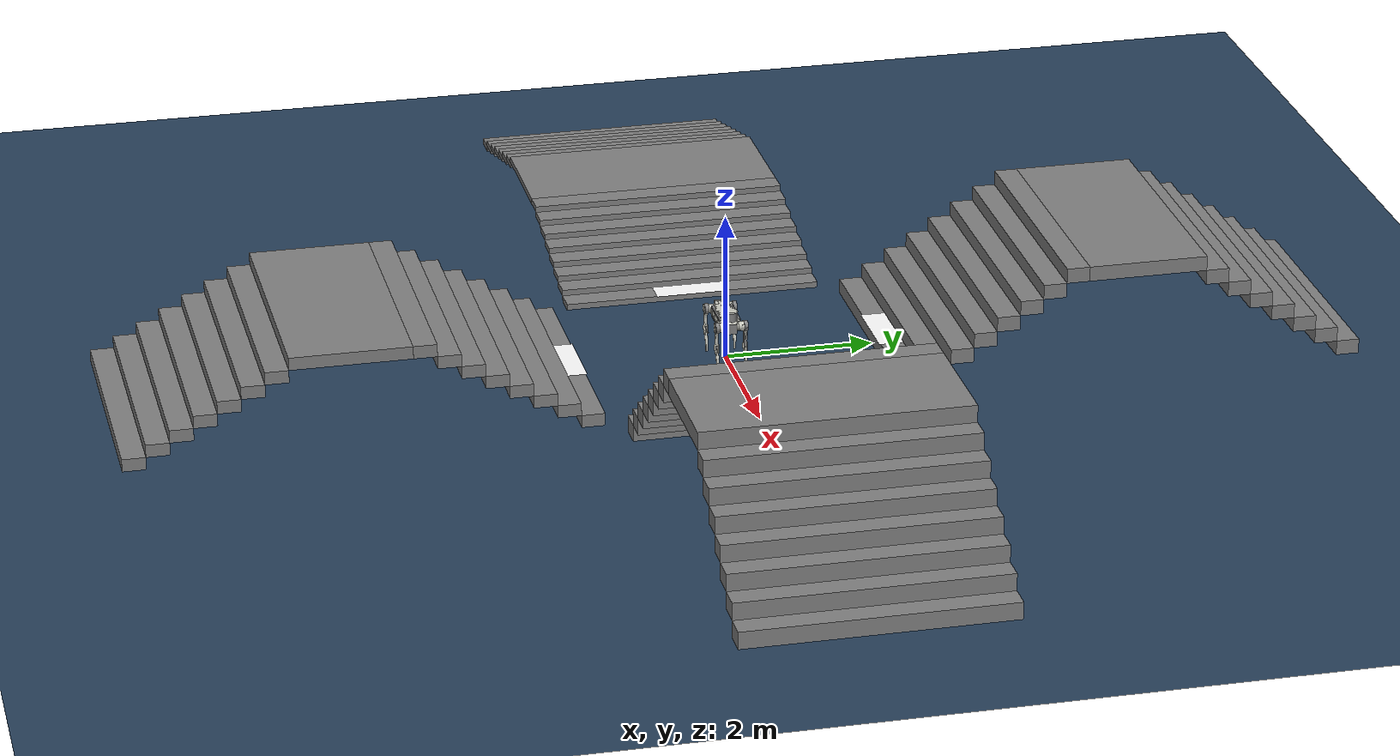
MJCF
<mujoco model="cross_stairs_1_4_7_10">
  <include file="b2.xml"/>
  <!-- Terrain: Cross Stairs Arch, Levels: 1,4,7,10. Cross Layout: Center Gap 2.0m. Arch step height: 0.0800 Arch step height: 0.2000 Arch step height: 0.2300 Arch step height: 0.1700 -->
  <statistic center="0 0 0.1" extent="0.8" />
  <visual>
    <headlight diffuse="0.6 0.6 0.6" ambient="0.3 0.3 0.3" specular="0 0 0" />
    <rgba haze="0.15 0.25 0.35 1" />
    <global azimuth="-130" elevation="-20" />
  </visual>
  <asset>
    <texture type="skybox" builtin="gradient" rgb1="0.3 0.5 0.7" rgb2="0 0 0" width="512" height="3072" />
    <texture type="2d" name="groundplane" builtin="checker" mark="edge" rgb1="0.2 0.3 0.4" rgb2="0.1 0.2 0.3" markrgb="0.8 0.8 0.8" width="300" height="300" />
    <material name="groundplane" texture="groundplane" texuniform="true" texrepeat="5 5" reflectance="0.0" />
    <texture name="tex_label_1" type="2d" file="./imgs/label_1.png" />
    <material name="mat_label_1" texture="tex_label_1" specular="0" shininess="0" emission="1" texrepeat="1 1" rgba="1 1 1 1" />
    <texture name="tex_label_7" type="2d" file="./imgs/label_7.png" />
    <material name="mat_label_7" texture="tex_label_7" specular="0" shininess="0" emission="1" texrepeat="1 1" rgba="1 1 1 1" />
    <texture name="tex_label_10" type="2d" file="./imgs/label_10.png" />
    <material name="mat_label_10" texture="tex_label_10" specular="0" shininess="0" emission="1" texrepeat="1 1" rgba="1 1 1 1" />
    <texture name="tex_label_4" type="2d" file="./imgs/label_4.png" />
    <material name="mat_label_4" texture="tex_label_4" specular="0" shininess="0" emission="1" texrepeat="1 1" rgba="1 1 1 1" />
  </asset>
  <worldbody>
    <light pos="0 0 1.5" dir="0 0 -1" directional="true" />
    <geom name="floor" size="0 0 0.05" type="plane" material="groundplane" />
    <geom pos="-2.155 1.8982025386783976e-17 0.04" type="box" size="0.155 1.75 0.04" quat="6.123233995736766e-17 0.0 0.0 1.0" />
    <geom pos="-2.465 5.694607616035192e-17 0.12" type="box" size="0.155 1.75 0.04" quat="6.123233995736766e-17 0.0 0.0 1.0" />
    <geom pos="-2.775 9.491012693391986e-17 0.2" type="box" size="0.155 1.75 0.04" quat="6.123233995736766e-17 0.0 0.0 1.0" />
    <geom pos="-3.085 1.328741777074878e-16 0.28" type="box" size="0.155 1.75 0.04" quat="6.123233995736766e-17 0.0 0.0 1.0" />
    <geom pos="-3.395 1.7083822848105578e-16 0.36000000000000004" type="box" size="0.155 1.75 0.04" quat="6.123233995736766e-17 0.0 0.0 1.0" />
    <geom pos="-3.705 2.0880227925462374e-16 0.44000000000000006" type="box" size="0.155 1.75 0.04" quat="6.123233995736766e-17 0.0 0.0 1.0" />
    <geom pos="-4.015000000000001 2.467663300281917e-16 0.52" type="box" size="0.155 1.75 0.04" quat="6.123233995736766e-17 0.0 0.0 1.0" />
    <geom pos="-4.325 2.8473038080175964e-16 0.6" type="box" size="0.155 1.75 0.04" quat="6.123233995736766e-17 0.0 0.0 1.0" />
    <geom pos="-5.28 4.016841501203319e-16 0.6" type="box" size="0.8 1.75 0.04" quat="6.123233995736766e-17 0.0 0.0 1.0" />
    <geom pos="-6.235 5.186379194389041e-16 0.52" type="box" size="0.155 1.75 0.04" quat="6.123233995736766e-17 0.0 0.0 1.0" />
    <geom pos="-6.545 5.56601970212472e-16 0.44" type="box" size="0.155 1.75 0.04" quat="6.123233995736766e-17 0.0 0.0 1.0" />
    <geom pos="-6.8549999999999995 5.945660209860399e-16 0.36" type="box" size="0.155 1.75 0.04" quat="6.123233995736766e-17 0.0 0.0 1.0" />
    <geom pos="-7.164999999999999 6.325300717596078e-16 0.27999999999999997" type="box" size="0.155 1.75 0.04" quat="6.123233995736766e-17 0.0 0.0 1.0" />
    <geom pos="-7.474999999999999 6.704941225331758e-16 0.19999999999999996" type="box" size="0.155 1.75 0.04" quat="6.123233995736766e-17 0.0 0.0 1.0" />
    <geom pos="-7.784999999999998 7.084581733067436e-16 0.11999999999999995" type="box" size="0.155 1.75 0.04" quat="6.123233995736766e-17 0.0 0.0 1.0" />
    <geom pos="-8.094999999999999 7.464222240803115e-16 0.03999999999999995" type="box" size="0.155 1.75 0.04" quat="6.123233995736766e-17 0.0 0.0 1.0" />
    <geom pos="-2.155 1.8982025386783976e-17 0.082" type="box" size="0.5 0.17532467532467533 0.0001" quat="0.7071067811865476 0.0 0.0 0.7071067811865475" contype="0" conaffinity="0" group="1" material="mat_label_1" rgba="1 1 1 1" />
    <geom pos="9.491012693391988e-18 2.155 0.1" type="box" size="0.155 1.75 0.1" quat="0.7071067811865476 0.0 0.0 0.7071067811865475" />
    <geom pos="2.847303808017596e-17 2.465 0.30000000000000004" type="box" size="0.155 1.75 0.1" quat="0.7071067811865476 0.0 0.0 0.7071067811865475" />
    <geom pos="4.745506346695993e-17 2.775 0.5" type="box" size="0.155 1.75 0.1" quat="0.7071067811865476 0.0 0.0 0.7071067811865475" />
    <geom pos="6.64370888537439e-17 3.085 0.7" type="box" size="0.155 1.75 0.1" quat="0.7071067811865476 0.0 0.0 0.7071067811865475" />
    <geom pos="8.541911424052789e-17 3.395 0.8999999999999999" type="box" size="0.155 1.75 0.1" quat="0.7071067811865476 0.0 0.0 0.7071067811865475" />
    <geom pos="1.0440113962731187e-16 3.705 1.0999999999999999" type="box" size="0.155 1.75 0.1" quat="0.7071067811865476 0.0 0.0 0.7071067811865475" />
    <geom pos="1.2338316501409585e-16 4.015000000000001 1.2999999999999998" type="box" size="0.155 1.75 0.1" quat="0.7071067811865476 0.0 0.0 0.7071067811865475" />
    <geom pos="1.4236519040087982e-16 4.325 1.4999999999999998" type="box" size="0.155 1.75 0.1" quat="0.7071067811865476 0.0 0.0 0.7071067811865475" />
    <geom pos="2.0084207506016595e-16 5.28 1.4999999999999998" type="box" size="0.8 1.75 0.1" quat="0.7071067811865476 0.0 0.0 0.7071067811865475" />
    <geom pos="2.5931895971945205e-16 6.235 1.2999999999999998" type="box" size="0.155 1.75 0.1" quat="0.7071067811865476 0.0 0.0 0.7071067811865475" />
    <geom pos="2.78300985106236e-16 6.545 1.0999999999999999" type="box" size="0.155 1.75 0.1" quat="0.7071067811865476 0.0 0.0 0.7071067811865475" />
    <geom pos="2.9728301049301994e-16 6.8549999999999995 0.8999999999999999" type="box" size="0.155 1.75 0.1" quat="0.7071067811865476 0.0 0.0 0.7071067811865475" />
    <geom pos="3.162650358798039e-16 7.164999999999999 0.7" type="box" size="0.155 1.75 0.1" quat="0.7071067811865476 0.0 0.0 0.7071067811865475" />
    <geom pos="3.352470612665879e-16 7.474999999999999 0.49999999999999994" type="box" size="0.155 1.75 0.1" quat="0.7071067811865476 0.0 0.0 0.7071067811865475" />
    <geom pos="3.542290866533718e-16 7.784999999999998 0.29999999999999993" type="box" size="0.155 1.75 0.1" quat="0.7071067811865476 0.0 0.0 0.7071067811865475" />
    <geom pos="3.7321111204015577e-16 8.094999999999999 0.09999999999999992" type="box" size="0.155 1.75 0.1" quat="0.7071067811865476 0.0 0.0 0.7071067811865475" />
    <geom pos="9.491012693391988e-18 2.155 0.202" type="box" size="0.5 0.17532467532467533 0.0001" quat="1.0 0.0 0.0 0.0" contype="0" conaffinity="0" group="1" material="mat_label_7" rgba="1 1 1 1" />
    <geom pos="2.155 0.0 0.115" type="box" size="0.155 1.75 0.115" quat="1.0 0.0 0.0 0.0" />
    <geom pos="2.465 0.0 0.34500000000000003" type="box" size="0.155 1.75 0.115" quat="1.0 0.0 0.0 0.0" />
    <geom pos="2.775 0.0 0.5750000000000001" type="box" size="0.155 1.75 0.115" quat="1.0 0.0 0.0 0.0" />
    <geom pos="3.085 0.0 0.805" type="box" size="0.155 1.75 0.115" quat="1.0 0.0 0.0 0.0" />
    <geom pos="3.395 0.0 1.0350000000000001" type="box" size="0.155 1.75 0.115" quat="1.0 0.0 0.0 0.0" />
    <geom pos="3.705 0.0 1.2650000000000001" type="box" size="0.155 1.75 0.115" quat="1.0 0.0 0.0 0.0" />
    <geom pos="4.015000000000001 0.0 1.495" type="box" size="0.155 1.75 0.115" quat="1.0 0.0 0.0 0.0" />
    <geom pos="4.325 0.0 1.725" type="box" size="0.155 1.75 0.115" quat="1.0 0.0 0.0 0.0" />
    <geom pos="5.28 0.0 1.725" type="box" size="0.8 1.75 0.115" quat="1.0 0.0 0.0 0.0" />
    <geom pos="6.235 0.0 1.495" type="box" size="0.155 1.75 0.115" quat="1.0 0.0 0.0 0.0" />
    <geom pos="6.545 0.0 1.2650000000000001" type="box" size="0.155 1.75 0.115" quat="1.0 0.0 0.0 0.0" />
    <geom pos="6.8549999999999995 0.0 1.0350000000000001" type="box" size="0.155 1.75 0.115" quat="1.0 0.0 0.0 0.0" />
    <geom pos="7.164999999999999 0.0 0.8050000000000002" type="box" size="0.155 1.75 0.115" quat="1.0 0.0 0.0 0.0" />
    <geom pos="7.474999999999999 0.0 0.5750000000000002" type="box" size="0.155 1.75 0.115" quat="1.0 0.0 0.0 0.0" />
    <geom pos="7.784999999999998 0.0 0.3450000000000002" type="box" size="0.155 1.75 0.115" quat="1.0 0.0 0.0 0.0" />
    <geom pos="8.094999999999999 0.0 0.11500000000000019" type="box" size="0.155 1.75 0.115" quat="1.0 0.0 0.0 0.0" />
    <geom pos="2.155 0.0 0.232" type="box" size="0.5 0.17532467532467533 0.0001" quat="0.7071067811865476 0.0 0.0 -0.7071067811865475" contype="0" conaffinity="0" group="1" material="mat_label_10" rgba="1 1 1 1" />
    <geom pos="9.491012693391988e-18 -2.155 0.08499999999999999" type="box" size="0.155 1.75 0.08499999999999999" quat="0.7071067811865476 0.0 0.0 -0.7071067811865475" />
    <geom pos="2.847303808017596e-17 -2.465 0.255" type="box" size="0.155 1.75 0.08499999999999999" quat="0.7071067811865476 0.0 0.0 -0.7071067811865475" />
    <geom pos="4.745506346695993e-17 -2.775 0.425" type="box" size="0.155 1.75 0.08499999999999999" quat="0.7071067811865476 0.0 0.0 -0.7071067811865475" />
    <geom pos="6.64370888537439e-17 -3.085 0.595" type="box" size="0.155 1.75 0.08499999999999999" quat="0.7071067811865476 0.0 0.0 -0.7071067811865475" />
    <geom pos="8.541911424052789e-17 -3.395 0.7649999999999999" type="box" size="0.155 1.75 0.08499999999999999" quat="0.7071067811865476 0.0 0.0 -0.7071067811865475" />
    <geom pos="1.0440113962731187e-16 -3.705 0.9349999999999998" type="box" size="0.155 1.75 0.08499999999999999" quat="0.7071067811865476 0.0 0.0 -0.7071067811865475" />
    <geom pos="1.2338316501409585e-16 -4.015000000000001 1.1049999999999998" type="box" size="0.155 1.75 0.08499999999999999" quat="0.7071067811865476 0.0 0.0 -0.7071067811865475" />
    <geom pos="1.4236519040087982e-16 -4.325 1.2749999999999997" type="box" size="0.155 1.75 0.08499999999999999" quat="0.7071067811865476 0.0 0.0 -0.7071067811865475" />
    <geom pos="2.0084207506016595e-16 -5.28 1.2749999999999997" type="box" size="0.8 1.75 0.08499999999999999" quat="0.7071067811865476 0.0 0.0 -0.7071067811865475" />
    <geom pos="2.5931895971945205e-16 -6.235 1.1049999999999998" type="box" size="0.155 1.75 0.08499999999999999" quat="0.7071067811865476 0.0 0.0 -0.7071067811865475" />
    <geom pos="2.78300985106236e-16 -6.545 0.9349999999999998" type="box" size="0.155 1.75 0.08499999999999999" quat="0.7071067811865476 0.0 0.0 -0.7071067811865475" />
    <geom pos="2.9728301049301994e-16 -6.8549999999999995 0.7649999999999999" type="box" size="0.155 1.75 0.08499999999999999" quat="0.7071067811865476 0.0 0.0 -0.7071067811865475" />
    <geom pos="3.162650358798039e-16 -7.164999999999999 0.595" type="box" size="0.155 1.75 0.08499999999999999" quat="0.7071067811865476 0.0 0.0 -0.7071067811865475" />
    <geom pos="3.352470612665879e-16 -7.474999999999999 0.425" type="box" size="0.155 1.75 0.08499999999999999" quat="0.7071067811865476 0.0 0.0 -0.7071067811865475" />
    <geom pos="3.542290866533718e-16 -7.784999999999998 0.255" type="box" size="0.155 1.75 0.08499999999999999" quat="0.7071067811865476 0.0 0.0 -0.7071067811865475" />
    <geom pos="3.7321111204015577e-16 -8.094999999999999 0.08500000000000002" type="box" size="0.155 1.75 0.08499999999999999" quat="0.7071067811865476 0.0 0.0 -0.7071067811865475" />
    <geom pos="9.491012693391988e-18 -2.155 0.172" type="box" size="0.5 0.17532467532467533 0.0001" quat="6.123233995736766e-17 0.0 0.0 -1.0" contype="0" conaffinity="0" group="1" material="mat_label_4" rgba="1 1 1 1" />
  </worldbody>
  <keyframe>
    <key name="b2_start" qpos="0 0 0.64 1 0 0 0 0.1 0.8 -1.5 -0.1 0.8 -1.5 0.1 1.0 -1.5 -0.1 1.0 -1.5"/>
  </keyframe>
</mujoco>

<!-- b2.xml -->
<mujoco model="b2_description">
  <compiler angle="radian" meshdir="assets" />
  <statistic meansize="0.25" extent="2.0" center="0 0 -0.35" />
  <default>
    <joint damping="0.02" armature="0.02" frictionloss="0.05" />
    <geom condim="3" friction="0.9 0.02 0.01" />
    <default class="visual">
      <geom type="mesh" contype="0" conaffinity="0" group="2" />
    </default>
  </default>
  <asset>
    <material name="b2_body" rgba="0.78 0.78 0.74 1" />
    <material name="black" rgba="0.06 0.06 0.06 1" />
    <mesh name="FL_calf_mesh" file="FL_calf.obj" />
    <mesh name="FL_hip_mesh" file="FL_hip.obj" />
    <mesh name="FL_thigh_mesh" file="FL_thigh.obj" />
    <mesh name="FR_calf_mesh" file="FR_calf.obj" />
    <mesh name="FR_hip_mesh" file="FR_hip.obj" />
    <mesh name="FR_thigh_mesh" file="FR_thigh.obj" />
    <mesh name="RL_calf_mesh" file="RL_calf.obj" />
    <mesh name="RL_hip_mesh" file="RL_hip.obj" />
    <mesh name="RL_thigh_mesh" file="RL_thigh.obj" />
    <mesh name="RR_calf_mesh" file="RR_calf.obj" />
    <mesh name="RR_hip_mesh" file="RR_hip.obj" />
    <mesh name="RR_thigh_mesh" file="RR_thigh.obj" />
    <mesh name="base_link_mesh" file="base_link.obj" />
  </asset>
  <worldbody>
    <body name="base" pos="0 0 0.58">
      <inertial pos="0.000458 0.005261 0.000665" mass="35.86" fullinertia="0.27466 1.0618 1.1825 -0.000622 0.00315 -0.00139" />
      <freejoint name="root" />
      <geom name="base_visual_0" mesh="base_link_mesh" material="b2_body" class="visual" />
      <geom name="base_collision_0" type="box" size="0.25 0.14 0.075" />
      <body pos="0.34218 0 0.17851" name="lidar_link">
        <geom pos="0 0 -0.02" name="lidar_link_collision_0" type="cylinder" size="0.076 0.08" />
      </body>
      <body pos="0.41251 0.024997 0.04765" quat="0.27059575 -0.65328103 0.65328343 -0.27059675" name="f_dc_link" />
      <body pos="-0.4081 -0.025 0.024861" quat="0.27075907 -0.65321336 -0.65321576 0.27076006" name="r_dc_link" />
      <body pos="0 -0.02341 0.04927" name="imu_link" />
      <body name="head_Link">
        <inertial pos="0.33989 -0.000168 0.12029" mass="3.6885" fullinertia="0.026455 0.029221 0.010918 3.15e-05 0.00166 -3.27e-05" />
        <geom pos="0.41 0 0.005" name="head_Link_collision_0" type="box" size="0.02 0.06 0.07" />
      </body>
      <body name="tail_link">
        <inertial pos="-0.37448 0.000488 0.006495" mass="0.795" fullinertia="0.0028118 0.0047506 0.0029154 1.95e-05 -7.87e-06 -1.57e-05" />
        <geom pos="-0.405 0 0.005" name="tail_link_collision_0" type="box" size="0.0125 0.06 0.07" />
      </body>
      <body pos="0.3285 0.072 0" name="FL_hip">
        <inertial pos="-0.003841 -0.009068 0" mass="2.673" fullinertia="0.0033188 0.0048743 0.0037087 7.16e-05 -3.77e-07 4e-09" />
        <joint name="FL_hip_joint" axis="1 0 0" range="-0.87 0.87" actuatorfrcrange="-200 200" />
        <geom name="FL_hip_visual_0" mesh="FL_hip_mesh" material="b2_body" class="visual" />
        <geom pos="0 0.12 0" quat="0.70710678 0.70710678 0 0" name="FL_hip_collision_0" type="cylinder" size="0.07 0.025" />
        <body pos="0 0.11973 0" name="FL_thigh">
          <inertial pos="-0.006279 -0.032049 -0.057835" mass="4.536" fullinertia="0.062299 0.061399 0.0081997 0.00087781 -0.0036475 0.0083537" />
          <joint name="FL_thigh_joint" axis="0 1 0" range="-0.94 4.69" actuatorfrcrange="-200 200" />
          <geom name="FL_thigh_visual_0" mesh="FL_thigh_mesh" material="b2_body" class="visual" />
          <geom pos="-0.025 0 -0.16" quat="0.70738827 0 0.70682518 0" name="FL_thigh_collision_0" type="box" size="0.16 0.02225 0.027" />
          <body pos="0 -8.6984e-05 -0.35" name="FL_calf">
            <inertial pos="0.012422 0 -0.12499" mass="0.404" fullinertia="0.01143 0.011534 0.000331 0 0.000643 0" />
            <joint name="FL_calf_joint" axis="0 1 0" range="-2.82 -0.43" actuatorfrcrange="-320 320" />
            <geom name="FL_calf_visual_0" mesh="FL_calf_mesh" material="b2_body" class="visual" />
            <geom pos="-0.002 0 -0.03" quat="0.82533561 0 0.56464247 0" name="FL_calf_collision_0" type="box" size="0.05 0.01225 0.009" />
            <geom pos="0.022 0 -0.1" quat="0.78070695 0 0.62489732 0" name="FL_calf_collision_1" type="box" size="0.05 0.01225 0.009" />
            <geom pos="0.036 0 -0.225" quat="0.72138236 0 0.692537 0" name="FL_calf_collision_2" type="box" size="0.075 0.01225 0.0075" />
            <geom pos="0.023 0 -0.31" quat="0.54030231 0 0.84147098 0" name="FL_calf_collision_3" type="box" size="0.025 0.014 0.0175" />
            <body pos="0 0 -0.35" name="FL_foot">
              <inertial pos="-0.006511 0 -0.010144" mass="0.126" fullinertia="3.8e-05 4.1e-05 4.2e-05 0 1.1e-05 0" />
              <geom quat="0.70738827 0.70682518 0 0" name="FL_foot_collision_0" type="sphere" size="0.032" />
            </body>
          </body>
          <body pos="0 -0.05788 0" name="FL_calf_rotor">
            <inertial pos="0 0 0" mass="0.2734" fullinertia="0.000144463 0.000144463 0.000263053 0 0 0" />
            <geom quat="0.70710678 0.70710678 0 0" name="FL_calf_rotor_collision_0" type="cylinder" size="0.05 0.01" />
          </body>
        </body>
        <body pos="0 -0.00798 0" name="FL_thigh_rotor">
          <inertial pos="0 0 0" mass="0.2734" fullinertia="0.000144463 0.000144463 0.000263053 0 0 0" />
          <geom quat="0.70710678 0.70710678 0 0" name="FL_thigh_rotor_collision_0" type="cylinder" size="0.05 0.01" />
        </body>
      </body>
      <body pos="0.20205 0.072 0" name="FL_hip_rotor">
        <inertial pos="0 0 0" mass="0.2734" fullinertia="0.000144463 0.000144463 0.000263053 0 0 0" />
        <geom quat="0.70710678 0 0.70710678 0" name="FL_hip_rotor_collision_0" type="cylinder" size="0.05 0.01" />
      </body>
      <body pos="0.3285 -0.072 0" name="FR_hip">
        <inertial pos="-0.009305 0.010228 0.000264" mass="2.673" fullinertia="0.0026431 0.0046728 0.0034208 -0.00019234 -6.76e-06 7.16e-06" />
        <joint name="FR_hip_joint" axis="1 0 0" range="-0.87 0.87" actuatorfrcrange="-200 200" />
        <geom name="FR_hip_visual_0" mesh="FR_hip_mesh" material="b2_body" class="visual" />
        <geom pos="0 -0.12 0" quat="0.70710678 0.70710678 0 0" name="FR_hip_collision_0" type="cylinder" size="0.07 0.025" />
        <body pos="0 -0.11973 0" name="FR_thigh">
          <inertial pos="-0.006279 0.032049 -0.057835" mass="4.536" fullinertia="0.06229908 0.06139927 0.008199745 -0.000877808 -0.003647464 -0.008353671" />
          <joint name="FR_thigh_joint" axis="0 1 0" range="-0.94 4.69" actuatorfrcrange="-200 200" />
          <geom name="FR_thigh_visual_0" mesh="FR_thigh_mesh" material="b2_body" class="visual" />
          <geom pos="-0.03 0 -0.2" quat="0.70738827 0 0.70682518 0" name="FR_thigh_collision_0" type="box" size="0.125 0.014 0.02" />
          <body pos="0 8.6986e-05 -0.35" name="FR_calf">
            <inertial pos="0.012422 0 -0.12499" mass="0.404" fullinertia="0.01143 0.011534 0.000331 0 0.000643 0" />
            <joint name="FR_calf_joint" axis="0 1 0" range="-2.82 -0.43" actuatorfrcrange="-320 320" />
            <geom name="FR_calf_visual_0" mesh="FR_calf_mesh" material="b2_body" class="visual" />
            <geom pos="-0.002 0 -0.03" quat="0.82533561 0 0.56464247 0" name="FR_calf_collision_0" type="box" size="0.05 0.01225 0.009" />
            <geom pos="0.022 0 -0.1" quat="0.78070695 0 0.62489732 0" name="FR_calf_collision_1" type="box" size="0.05 0.01225 0.009" />
            <geom pos="0.036 0 -0.225" quat="0.72138236 0 0.692537 0" name="FR_calf_collision_2" type="box" size="0.075 0.01225 0.0075" />
            <geom pos="0.023 0 -0.31" quat="0.54030231 0 0.84147098 0" name="FR_calf_collision_3" type="box" size="0.025 0.014 0.0175" />
            <body pos="0 0 -0.35" name="FR_foot">
              <inertial pos="-0.006511 0 -0.010144" mass="0.126" fullinertia="3.8e-05 4.1e-05 4.2e-05 0 1.1e-05 0" />
              <geom quat="0.70738827 0.70682518 0 0" name="FR_foot_collision_0" type="sphere" size="0.032" />
            </body>
          </body>
          <body pos="0 0.05788 0" name="FR_calf_rotor">
            <inertial pos="0 0 0" mass="0.2734" fullinertia="0.000144463 0.000144463 0.000263053 0 0 0" />
            <geom quat="0.70710678 0.70710678 0 0" name="FR_calf_rotor_collision_0" type="cylinder" size="0.05 0.01" />
          </body>
        </body>
        <body pos="0 0.00798 0" name="FR_thigh_rotor">
          <inertial pos="0 0 0" mass="0.2734" fullinertia="0.000144463 0.000144463 0.000263053 0 0 0" />
          <geom quat="0.70710678 0.70710678 0 0" name="FR_thigh_rotor_collision_0" type="cylinder" size="0.05 0.01" />
        </body>
      </body>
      <body pos="0.20205 -0.072 0" name="FR_hip_rotor">
        <inertial pos="0 0 0" mass="0.2734" fullinertia="0.000144463 0.000144463 0.000263053 0 0 0" />
        <geom quat="0.70710678 0 0.70710678 0" name="FR_hip_rotor_collision_0" type="cylinder" size="0.05 0.01" />
      </body>
      <body pos="-0.3285 0.072 0" name="RL_hip">
        <inertial pos="0.009305 -0.010228 0.000264" mass="2.673" fullinertia="0.0026431 0.0046728 0.0034208 -0.00019234 6.76e-06 -7.16e-06" />
        <joint name="RL_hip_joint" axis="1 0 0" range="-0.87 0.87" actuatorfrcrange="-200 200" />
        <geom name="RL_hip_visual_0" mesh="RL_hip_mesh" material="b2_body" class="visual" />
        <geom pos="0 0.12 0" quat="0.70710678 0.70710678 0 0" name="RL_hip_collision_0" type="cylinder" size="0.07 0.025" />
        <body pos="0 0.11973 0" name="RL_thigh">
          <inertial pos="-0.006279 -0.032049 -0.057835" mass="4.536" fullinertia="0.06229908 0.06139927 0.008199745 0.000877808 -0.003647464 0.008353671" />
          <joint name="RL_thigh_joint" axis="0 1 0" range="-0.94 4.69" actuatorfrcrange="-200 200" />
          <geom name="RL_thigh_visual_0" mesh="RL_thigh_mesh" material="b2_body" class="visual" />
          <geom pos="-0.03 0 -0.2" quat="0.70738827 0 0.70682518 0" name="RL_thigh_collision_0" type="box" size="0.125 0.014 0.02" />
          <body pos="0 -8.6984e-05 -0.35" name="RL_calf">
            <inertial pos="0.012422 0 -0.12499" mass="0.404" fullinertia="0.01143 0.011534 0.000331 0 0.000643 0" />
            <joint name="RL_calf_joint" axis="0 1 0" range="-2.82 -0.43" actuatorfrcrange="-320 320" />
            <geom name="RL_calf_visual_0" mesh="RL_calf_mesh" material="b2_body" class="visual" />
            <geom pos="-0.002 0 -0.03" quat="0.82533561 0 0.56464247 0" name="RL_calf_collision_0" type="box" size="0.05 0.01225 0.009" />
            <geom pos="0.022 0 -0.1" quat="0.78070695 0 0.62489732 0" name="RL_calf_collision_1" type="box" size="0.05 0.01225 0.009" />
            <geom pos="0.036 0 -0.225" quat="0.72138236 0 0.692537 0" name="RL_calf_collision_2" type="box" size="0.075 0.01225 0.0075" />
            <geom pos="0.023 0 -0.31" quat="0.54030231 0 0.84147098 0" name="RL_calf_collision_3" type="box" size="0.025 0.014 0.0175" />
            <body pos="0 0 -0.35" name="RL_foot">
              <inertial pos="-0.006511 0 -0.010144" mass="0.126" fullinertia="3.8e-05 4.1e-05 4.2e-05 0 1.1e-05 0" />
              <geom quat="0.70738827 0.70682518 0 0" name="RL_foot_collision_0" type="sphere" size="0.032" />
            </body>
          </body>
          <body pos="0 -0.05788 0" name="RL_calf_rotor">
            <inertial pos="0 0 0" mass="0.2734" fullinertia="0.000144463 0.000144463 0.000263053 0 0 0" />
            <geom quat="0.70710678 0.70710678 0 0" name="RL_calf_rotor_collision_0" type="cylinder" size="0.05 0.01" />
          </body>
        </body>
        <body pos="0 -0.00798 0" name="RL_thigh_rotor">
          <inertial pos="0 0 0" mass="0.2734" fullinertia="0.000144463 0.000144463 0.000263053 0 0 0" />
          <geom quat="0.70710678 0.70710678 0 0" name="RL_thigh_rotor_collision_0" type="cylinder" size="0.05 0.01" />
        </body>
      </body>
      <body pos="-0.20205 0.072 0" name="RL_hip_rotor">
        <inertial pos="0 0 0" mass="0.2734" fullinertia="0.000144463 0.000144463 0.000263053 0 0 0" />
        <geom quat="0.70710678 0 0.70710678 0" name="RL_hip_rotor_collision_0" type="cylinder" size="0.05 0.01" />
      </body>
      <body pos="-0.3285 -0.072 0" name="RR_hip">
        <inertial pos="0.003841 0.009068 0" mass="2.673" fullinertia="0.0033188 0.0048743 0.0037087 7.16e-05 3.77e-07 -4e-09" />
        <joint name="RR_hip_joint" axis="1 0 0" range="-0.87 0.87" actuatorfrcrange="-200 200" />
        <geom name="RR_hip_visual_0" mesh="RR_hip_mesh" material="b2_body" class="visual" />
        <geom pos="0 -0.12 0" quat="0.70710678 0.70710678 0 0" name="RR_hip_collision_0" type="cylinder" size="0.07 0.025" />
        <body pos="0 -0.11973 0" name="RR_thigh">
          <inertial pos="-0.006279 0.032049 -0.057835" mass="4.536" fullinertia="0.062299 0.061399 0.0081997 -0.00087781 -0.0036475 -0.0083537" />
          <joint name="RR_thigh_joint" axis="0 1 0" range="-0.94 4.69" actuatorfrcrange="-200 200" />
          <geom name="RR_thigh_visual_0" mesh="RR_thigh_mesh" material="b2_body" class="visual" />
          <geom pos="-0.03 0 -0.2" quat="0.70738827 0 0.70682518 0" name="RR_thigh_collision_0" type="box" size="0.125 0.014 0.02" />
          <body pos="0 8.6986e-05 -0.35" name="RR_calf">
            <inertial pos="0.012422 0 -0.12499" mass="0.404" fullinertia="0.01143 0.011534 0.000331 0 0.000643 0" />
            <joint name="RR_calf_joint" axis="0 1 0" range="-2.82 -0.43" actuatorfrcrange="-320 320" />
            <geom name="RR_calf_visual_0" mesh="RR_calf_mesh" material="b2_body" class="visual" />
            <geom pos="-0.002 0 -0.03" quat="0.82533561 0 0.56464247 0" name="RR_calf_collision_0" type="box" size="0.05 0.01225 0.009" />
            <geom pos="0.022 0 -0.1" quat="0.78070695 0 0.62489732 0" name="RR_calf_collision_1" type="box" size="0.05 0.01225 0.009" />
            <geom pos="0.036 0 -0.225" quat="0.72138236 0 0.692537 0" name="RR_calf_collision_2" type="box" size="0.075 0.01225 0.0075" />
            <geom pos="0.023 0 -0.31" quat="0.54030231 0 0.84147098 0" name="RR_calf_collision_3" type="box" size="0.025 0.014 0.0175" />
            <body pos="0 -8.6984e-05 -0.35" name="RR_foot">
              <inertial pos="-0.006511 0 -0.010144" mass="0.126" fullinertia="3.8e-05 4.1e-05 4.2e-05 0 1.1e-05 0" />
              <geom quat="0.70738827 0.70682518 0 0" name="RR_foot_collision_0" type="sphere" size="0.032" />
            </body>
          </body>
          <body pos="0 0.05788 0" name="RR_calf_rotor">
            <inertial pos="0 0 0" mass="0.2734" fullinertia="0.000144463 0.000144463 0.000263053 0 0 0" />
            <geom quat="0.70710678 0.70710678 0 0" name="RR_calf_rotor_collision_0" type="cylinder" size="0.05 0.01" />
          </body>
        </body>
        <body pos="0 0.00798 0" name="RR_thigh_rotor">
          <inertial pos="0 0 0" mass="0.2734" fullinertia="0.000144463 0.000144463 0.000263053 0 0 0" />
          <geom quat="0.70710678 0.70710678 0 0" name="RR_thigh_rotor_collision_0" type="cylinder" size="0.05 0.01" />
        </body>
      </body>
      <body pos="-0.20205 -0.072 0" name="RR_hip_rotor">
        <inertial pos="0 0 0" mass="0.2734" fullinertia="0.000144463 0.000144463 0.000263053 0 0 0" />
        <geom quat="0.70710678 0 0.70710678 0" name="RR_hip_rotor_collision_0" type="cylinder" size="0.05 0.01" />
      </body>
      <body pos="0.39079 0 -0.013433" quat="0.49999816 -0.5 0.50000184 -0.5" name="f_oc_link" />
      <body pos="-0.38451 0 -0.023249" quat="0.49999816 -0.5 -0.50000184 0.5" name="r_oc_link" />
    </body>
  </worldbody>
  <contact>
    <!-- Training disables robot self-collisions; keep same-leg internal contacts from locking the leg. -->
    <exclude body1="base" body2="FL_hip_rotor" />
    <exclude body1="FL_hip" body2="FL_hip_rotor" />
    <exclude body1="FL_hip" body2="FL_thigh" />
    <exclude body1="FL_hip" body2="FL_thigh_rotor" />
    <exclude body1="FL_thigh" body2="FL_thigh_rotor" />
    <exclude body1="FL_thigh" body2="FL_calf" />
    <exclude body1="FL_thigh" body2="FL_calf_rotor" />
    <exclude body1="FL_calf" body2="FL_calf_rotor" />
    <exclude body1="FL_calf" body2="FL_foot" />
    <exclude body1="base" body2="FR_hip_rotor" />
    <exclude body1="FR_hip" body2="FR_hip_rotor" />
    <exclude body1="FR_hip" body2="FR_thigh" />
    <exclude body1="FR_hip" body2="FR_thigh_rotor" />
    <exclude body1="FR_thigh" body2="FR_thigh_rotor" />
    <exclude body1="FR_thigh" body2="FR_calf" />
    <exclude body1="FR_thigh" body2="FR_calf_rotor" />
    <exclude body1="FR_calf" body2="FR_calf_rotor" />
    <exclude body1="FR_calf" body2="FR_foot" />
    <exclude body1="base" body2="RL_hip_rotor" />
    <exclude body1="RL_hip" body2="RL_hip_rotor" />
    <exclude body1="RL_hip" body2="RL_thigh" />
    <exclude body1="RL_hip" body2="RL_thigh_rotor" />
    <exclude body1="RL_thigh" body2="RL_thigh_rotor" />
    <exclude body1="RL_thigh" body2="RL_calf" />
    <exclude body1="RL_thigh" body2="RL_calf_rotor" />
    <exclude body1="RL_calf" body2="RL_calf_rotor" />
    <exclude body1="RL_calf" body2="RL_foot" />
    <exclude body1="base" body2="RR_hip_rotor" />
    <exclude body1="RR_hip" body2="RR_hip_rotor" />
    <exclude body1="RR_hip" body2="RR_thigh" />
    <exclude body1="RR_hip" body2="RR_thigh_rotor" />
    <exclude body1="RR_thigh" body2="RR_thigh_rotor" />
    <exclude body1="RR_thigh" body2="RR_calf" />
    <exclude body1="RR_calf" body2="RR_calf_rotor" />
    <exclude body1="RR_thigh" body2="RR_calf_rotor" />
    <exclude body1="RR_calf" body2="RR_foot" />
  </contact>
  <actuator>
    <motor name="FL_hip" joint="FL_hip_joint" ctrllimited="true" ctrlrange="-200 200" />
    <motor name="FL_thigh" joint="FL_thigh_joint" ctrllimited="true" ctrlrange="-200 200" />
    <motor name="FL_calf" joint="FL_calf_joint" ctrllimited="true" ctrlrange="-320 320" />
    <motor name="FR_hip" joint="FR_hip_joint" ctrllimited="true" ctrlrange="-200 200" />
    <motor name="FR_thigh" joint="FR_thigh_joint" ctrllimited="true" ctrlrange="-200 200" />
    <motor name="FR_calf" joint="FR_calf_joint" ctrllimited="true" ctrlrange="-320 320" />
    <motor name="RL_hip" joint="RL_hip_joint" ctrllimited="true" ctrlrange="-200 200" />
    <motor name="RL_thigh" joint="RL_thigh_joint" ctrllimited="true" ctrlrange="-200 200" />
    <motor name="RL_calf" joint="RL_calf_joint" ctrllimited="true" ctrlrange="-320 320" />
    <motor name="RR_hip" joint="RR_hip_joint" ctrllimited="true" ctrlrange="-200 200" />
    <motor name="RR_thigh" joint="RR_thigh_joint" ctrllimited="true" ctrlrange="-200 200" />
    <motor name="RR_calf" joint="RR_calf_joint" ctrllimited="true" ctrlrange="-320 320" />
  </actuator>
</mujoco>
